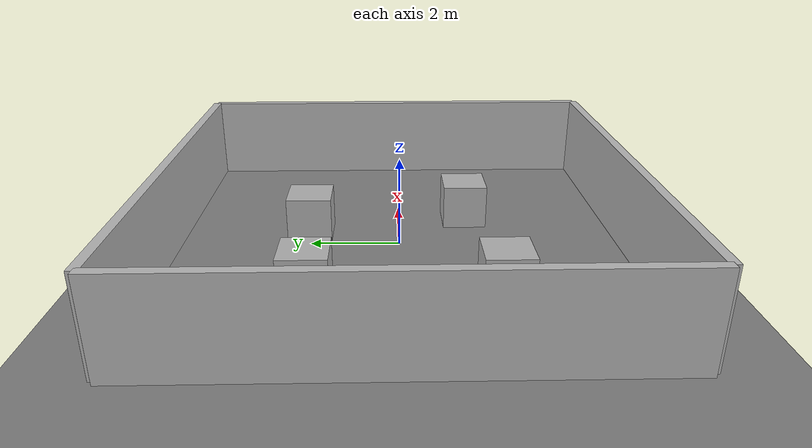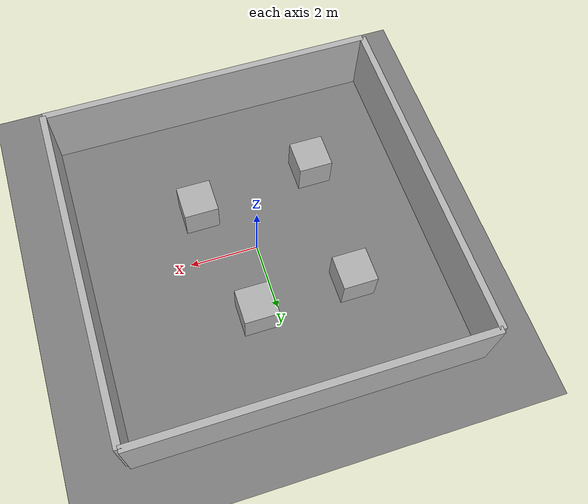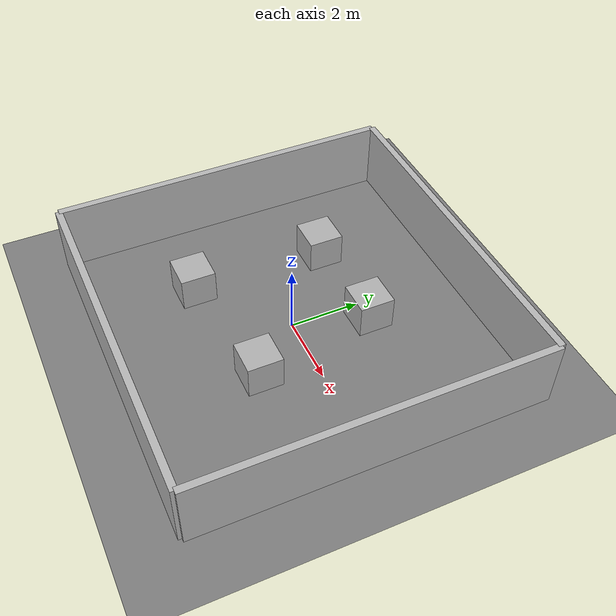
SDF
<sdf version='1.9'>
  <world name='square_world'>
    <gravity>0 0 -9.8</gravity>
    <magnetic_field>6e-06 2.3e-05 -4.2e-05</magnetic_field>
    <atmosphere type='adiabatic'/>
    <physics type="dart">
        <max_step_size>0.005</max_step_size>  <real_time_factor>0.0</real_time_factor>
        <real_time_update_rate>0</real_time_update_rate>
        <solver>
            <iterations>50</iterations> </solver>
    </physics>

    <plugin
      filename="ignition-gazebo-physics-system"
      name="ignition::gazebo::systems::Physics">
    </plugin>
    <plugin
      filename="ignition-gazebo-sensors-system"
      name="ignition::gazebo::systems::Sensors">
      <render_engine>ogre</render_engine>
    </plugin>
    <plugin
      filename="ignition-gazebo-scene-broadcaster-system"
      name="ignition::gazebo::systems::SceneBroadcaster">
    </plugin>
    <plugin
      filename="ignition-gazebo-user-commands-system"
      name="ignition::gazebo::systems::UserCommands">
    </plugin>
    <plugin filename="gz-sim-imu-system"
      name="gz::sim::systems::Imu">
    </plugin>

    <scene>
      <ambient>0.4 0.4 0.4 1</ambient>
      <background>0.7 0.7 0.7 1</background>
      <shadows>true</shadows>
    </scene>

    <model name='ground_plane'>
      <static>true</static>
      <link name='link'>
        <collision name='collision'>
          <geometry>
            <plane>
              <normal>0 0 1</normal>
              <size>100 100</size>
            </plane>
          </geometry>
          <surface>
            <friction>
              <ode/>
            </friction>
            <bounce/>
            <contact/>
          </surface>
        </collision>
        <visual name='visual'>
          <geometry>
            <plane>
              <normal>0 0 1</normal>
              <size>100 100</size>
            </plane>
          </geometry>
          <material>
            <ambient>0.5 0.5 0.5 1</ambient>
            <diffuse>0.5 0.5 0.5 1</diffuse>
          </material>
        </visual>
        <pose>0 0 0 0 -0 0</pose>
        <inertial>
          <pose>0 0 0 0 -0 0</pose>
          <mass>1</mass>
          <inertia>
            <ixx>1</ixx>
            <ixy>0</ixy>
            <ixz>0</ixz>
            <iyy>1</iyy>
            <iyz>0</iyz>
            <izz>1</izz>
          </inertia>
        </inertial>
        <enable_wind>false</enable_wind>
      </link>
      <pose>0 0 0 0 -0 0</pose>
      <self_collide>false</self_collide>
    </model>

    <model name='wall_north'>
      <static>true</static>
      <pose>0 5 1 0 -0 0</pose>
      <link name='link'>
        <collision name='collision'>
          <geometry>
            <box>
              <size>10 0.2 2</size>
            </box>
          </geometry>
          <surface>
            <friction>
              <ode/>
            </friction>
            <bounce/>
            <contact/>
          </surface>
        </collision>
        <visual name='visual'>
          <geometry>
            <box>
              <size>10 0.2 2</size>
            </box>
          </geometry>
        </visual>
        <pose>0 0 0 0 -0 0</pose>
        <inertial>
          <pose>0 0 0 0 -0 0</pose>
          <mass>1</mass>
          <inertia>
            <ixx>1</ixx>
            <ixy>0</ixy>
            <ixz>0</ixz>
            <iyy>1</iyy>
            <iyz>0</iyz>
            <izz>1</izz>
          </inertia>
        </inertial>
        <enable_wind>false</enable_wind>
      </link>
      <self_collide>false</self_collide>
    </model>
    <model name='wall_south'>
      <static>true</static>
      <pose>0 -5 1 0 -0 0</pose>
      <link name='link'>
        <collision name='collision'>
          <geometry>
            <box>
              <size>10 0.2 2</size>
            </box>
          </geometry>
          <surface>
            <friction>
              <ode/>
            </friction>
            <bounce/>
            <contact/>
          </surface>
        </collision>
        <visual name='visual'>
          <geometry>
            <box>
              <size>10 0.2 2</size>
            </box>
          </geometry>
        </visual>
        <pose>0 0 0 0 -0 0</pose>
        <inertial>
          <pose>0 0 0 0 -0 0</pose>
          <mass>1</mass>
          <inertia>
            <ixx>1</ixx>
            <ixy>0</ixy>
            <ixz>0</ixz>
            <iyy>1</iyy>
            <iyz>0</iyz>
            <izz>1</izz>
          </inertia>
        </inertial>
        <enable_wind>false</enable_wind>
      </link>
      <self_collide>false</self_collide>
    </model>
    <model name='wall_east'>
      <static>true</static>
      <pose>5 0 1 0 -0 1.5708</pose>
      <link name='link'>
        <collision name='collision'>
          <geometry>
            <box>
              <size>10 0.2 2</size>
            </box>
          </geometry>
          <surface>
            <friction>
              <ode/>
            </friction>
            <bounce/>
            <contact/>
          </surface>
        </collision>
        <visual name='visual'>
          <geometry>
            <box>
              <size>10 0.2 2</size>
            </box>
          </geometry>
        </visual>
        <pose>0 0 0 0 -0 0</pose>
        <inertial>
          <pose>0 0 0 0 -0 0</pose>
          <mass>1</mass>
          <inertia>
            <ixx>1</ixx>
            <ixy>0</ixy>
            <ixz>0</ixz>
            <iyy>1</iyy>
            <iyz>0</iyz>
            <izz>1</izz>
          </inertia>
        </inertial>
        <enable_wind>false</enable_wind>
      </link>
      <self_collide>false</self_collide>
    </model>
    <model name='wall_west'>
      <static>true</static>
      <pose>-5 0 1 0 -0 1.5708</pose>
      <link name='link'>
        <collision name='collision'>
          <geometry>
            <box>
              <size>10 0.2 2</size>
            </box>
          </geometry>
          <surface>
            <friction>
              <ode/>
            </friction>
            <bounce/>
            <contact/>
          </surface>
        </collision>
        <visual name='visual'>
          <geometry>
            <box>
              <size>10 0.2 2</size>
            </box>
          </geometry>
        </visual>
        <pose>0 0 0 0 -0 0</pose>
        <inertial>
          <pose>0 0 0 0 -0 0</pose>
          <mass>1</mass>
          <inertia>
            <ixx>1</ixx>
            <ixy>0</ixy>
            <ixz>0</ixz>
            <iyy>1</iyy>
            <iyz>0</iyz>
            <izz>1</izz>
          </inertia>
        </inertial>
        <enable_wind>false</enable_wind>
      </link>
      <self_collide>false</self_collide>
    </model>
    <model name='box'>
      <pose>0.630029 2.04468 0.5 0 -0 0</pose>
      <link name='box_link'>
        <inertial>
          <inertia>
            <ixx>0.16666</ixx>
            <ixy>0</ixy>
            <ixz>0</ixz>
            <iyy>0.16666</iyy>
            <iyz>0</iyz>
            <izz>0.16666</izz>
          </inertia>
          <mass>1</mass>
          <pose>0 0 0 0 -0 0</pose>
        </inertial>
        <collision name='box_collision'>
          <geometry>
            <box>
              <size>1 1 1</size>
            </box>
          </geometry>
          <surface>
            <friction>
              <ode/>
            </friction>
            <bounce/>
            <contact/>
          </surface>
        </collision>
        <visual name='box_visual'>
          <geometry>
            <box>
              <size>1 1 1</size>
            </box>
          </geometry>
          <material>
            <ambient>0.3 0.3 0.3 1</ambient>
            <diffuse>0.7 0.7 0.7 1</diffuse>
            <specular>1 1 1 1</specular>
          </material>
        </visual>
        <pose>0 0 0 0 -0 0</pose>
        <enable_wind>false</enable_wind>
      </link>
      <static>false</static>
      <self_collide>false</self_collide>
    </model>
    <model name='box_0'>
      <pose>1.33256 -1.54975 0.5 0 -0 0</pose>
      <link name='box_link'>
        <inertial>
          <inertia>
            <ixx>0.16666</ixx>
            <ixy>0</ixy>
            <ixz>0</ixz>
            <iyy>0.16666</iyy>
            <iyz>0</iyz>
            <izz>0.16666</izz>
          </inertia>
          <mass>1</mass>
          <pose>0 0 0 0 -0 0</pose>
        </inertial>
        <collision name='box_collision'>
          <geometry>
            <box>
              <size>1 1 1</size>
            </box>
          </geometry>
          <surface>
            <friction>
              <ode/>
            </friction>
            <bounce/>
            <contact/>
          </surface>
        </collision>
        <visual name='box_visual'>
          <geometry>
            <box>
              <size>1 1 1</size>
            </box>
          </geometry>
          <material>
            <ambient>0.3 0.3 0.3 1</ambient>
            <diffuse>0.7 0.7 0.7 1</diffuse>
            <specular>1 1 1 1</specular>
          </material>
        </visual>
        <pose>0 0 0 0 -0 0</pose>
        <enable_wind>false</enable_wind>
      </link>
      <static>false</static>
      <self_collide>false</self_collide>
    </model>
    <model name='box_1'>
      <pose>-2.26758 1.89423 0.5 0 -0 0</pose>
      <link name='box_link'>
        <inertial>
          <inertia>
            <ixx>0.16666</ixx>
            <ixy>0</ixy>
            <ixz>0</ixz>
            <iyy>0.16666</iyy>
            <iyz>0</iyz>
            <izz>0.16666</izz>
          </inertia>
          <mass>1</mass>
          <pose>0 0 0 0 -0 0</pose>
        </inertial>
        <collision name='box_collision'>
          <geometry>
            <box>
              <size>1 1 1</size>
            </box>
          </geometry>
          <surface>
            <friction>
              <ode/>
            </friction>
            <bounce/>
            <contact/>
          </surface>
        </collision>
        <visual name='box_visual'>
          <geometry>
            <box>
              <size>1 1 1</size>
            </box>
          </geometry>
          <material>
            <ambient>0.3 0.3 0.3 1</ambient>
            <diffuse>0.7 0.7 0.7 1</diffuse>
            <specular>1 1 1 1</specular>
          </material>
        </visual>
        <pose>0 0 0 0 -0 0</pose>
        <enable_wind>false</enable_wind>
      </link>
      <static>false</static>
      <self_collide>false</self_collide>
    </model>
    <model name='box_2'>
      <pose>-2.33322 -2.03267 0.5 0 -0 0</pose>
      <link name='box_link'>
        <inertial>
          <inertia>
            <ixx>0.16666</ixx>
            <ixy>0</ixy>
            <ixz>0</ixz>
            <iyy>0.16666</iyy>
            <iyz>0</iyz>
            <izz>0.16666</izz>
          </inertia>
          <mass>1</mass>
          <pose>0 0 0 0 -0 0</pose>
        </inertial>
        <collision name='box_collision'>
          <geometry>
            <box>
              <size>1 1 1</size>
            </box>
          </geometry>
          <surface>
            <friction>
              <ode/>
            </friction>
            <bounce/>
            <contact/>
          </surface>
        </collision>
        <visual name='box_visual'>
          <geometry>
            <box>
              <size>1 1 1</size>
            </box>
          </geometry>
          <material>
            <ambient>0.3 0.3 0.3 1</ambient>
            <diffuse>0.7 0.7 0.7 1</diffuse>
            <specular>1 1 1 1</specular>
          </material>
        </visual>
        <pose>0 0 0 0 -0 0</pose>
        <enable_wind>false</enable_wind>
      </link>
      <static>false</static>
      <self_collide>false</self_collide>
    </model>
    <light name='sun' type='directional'>
      <pose>0 0 10 0 -0 0</pose>
      <cast_shadows>true</cast_shadows>
      <intensity>1</intensity>
      <direction>-0.5 0.5 -1</direction>
      <diffuse>1 1 1 1</diffuse>
      <specular>0.1 0.1 0.1 1</specular>
      <attenuation>
        <range>10</range>
        <linear>1</linear>
        <constant>1</constant>
        <quadratic>0</quadratic>
      </attenuation>
      <spot>
        <inner_angle>0</inner_angle>
        <outer_angle>0</outer_angle>
        <falloff>0</falloff>
      </spot>
    </light>
  </world>
</sdf>
